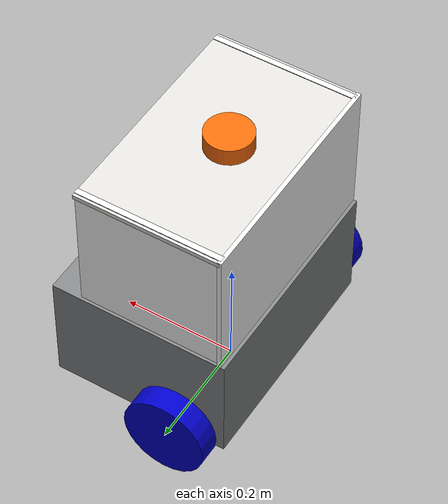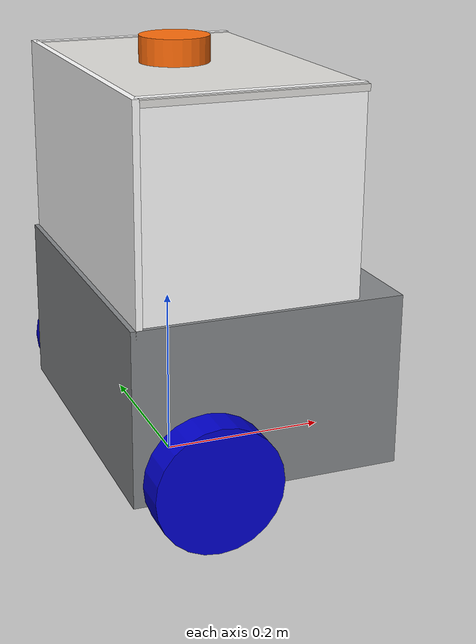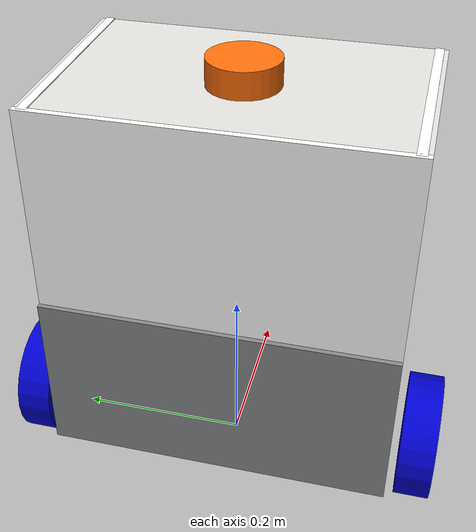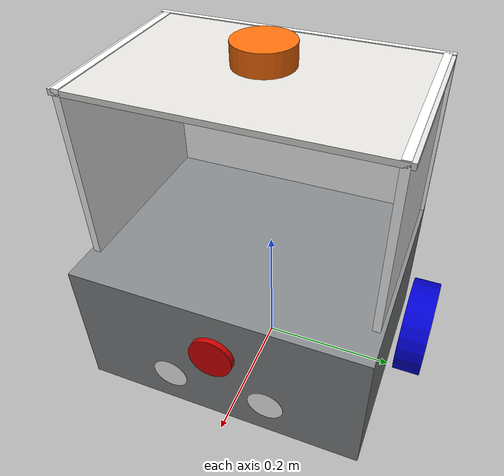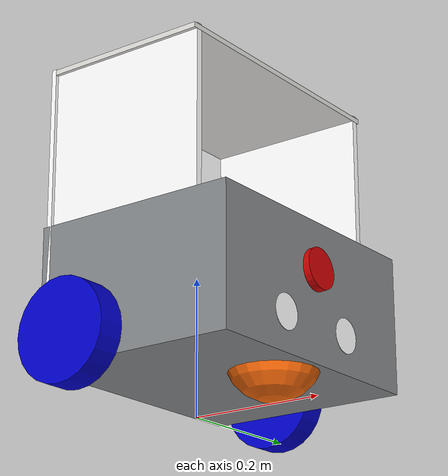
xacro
<?xml version="1.0"?>
<robot xmlns:xacro="http://www.ros.org/wiki/xacro">

	    <material name="black">
		<color rgba="0.0 0.0 0.0 1.0"/>
	    </material>

	    <material name="blue">
		<color rgba="0.0 0.0 0.8 1.0"/>
	    </material>

	    <material name="green">
		<color rgba="0.0 0.8 0.0 1.0"/>
	    </material>

	    <material name="grey">
		<color rgba="0.2 0.2 0.2 1.0"/>
	    </material>

	    <material name="orange">
		<color rgba="${255/255} ${108/255} ${10/255} 1.0"/>
	    </material>

	    <material name="brown">
		<color rgba="${222/255} ${207/255} ${195/255} 1.0"/>
	    </material>

	    <material name="red">
		<color rgba="0.8 0.0 0.0 1.0"/>
	    </material>

	    <material name="white">
		<color rgba="1.0 1.0 1.0 1.0"/>
	    </material>

	    <material name="stainless">
		<color rgba="${224/255} ${223/255} ${219/255} 1.0"/>
	    </material>

	    <material name="aluminium">
		<color rgba="${132/255} ${135/255} ${137/255} 1.0"/>
	    </material>

	    <xacro:property name="body_length" value="0.31"/>
	    <xacro:property name="body_width" value="0.4"/>
	    <xacro:property name="body_height" value="0.2"/>
	    <xacro:property name="body_mass" value="12"/>

	    <xacro:property name="base_caster_length" value="0.25"/>
	    <xacro:property name="base_caster_width" value="0.01"/>
	    <xacro:property name="base_caster_height" value="0.37"/>

	    <xacro:property name="above_base_caster_length" value="0.25"/>
	    <xacro:property name="above_base_caster_width" value="0.4"/>
	    <xacro:property name="above_base_caster_height" value="0.0075"/>

	    <xacro:property name="back_base_caster_length" value="0.0075"/>
	    <xacro:property name="back_base_caster_width" value="0.4"/>
	    <xacro:property name="back_base_caster_height" value="0.37"/>

	    <xacro:property name="wheel_radius" value="0.072"/>
	    <xacro:property name="wheel_width" value="0.04"/>
	    <xacro:property name="wheel_mass" value="0.4"/>
	    <xacro:property name="wheel_separation" value="0.46"/>
	    <xacro:property name="PI" value="3.1415926535897931"/>

	    <xacro:macro name="cylinder_inertia" params="m r h">
		<inertia ixx="${m*(3*r*r+h*h)/12}" ixy = "0" ixz = "0"
		         iyy="${m*(3*r*r+h*h)/12}" iyz = "0"
		         izz="${m*r*r/2}"/>
	    </xacro:macro>

	    <xacro:macro name="box_inertia" params="m l w h">
		<inertia ixx="${m*(h*h+l*l)/12}" ixy = "0" ixz = "0"
		         iyy="${m*(w*w+h*h)/12}" iyz = "0"
		         izz="${m*(w*w+l*l)/12}" />
	    </xacro:macro>

    	<link name="base_footprint">
    		<origin xyz="0.0 0.0 0.0"/>

    	</link>

       <joint name="base_footprint_joint" type="fixed">
       	<origin xyz="0.0 0.0 ${wheel_radius}" rpy="0.0 0.0 0.0"/>
        	<parent link="base_footprint"/>
        	<child link="base_link"/>

    	</joint>

       <link name="base_link">
       	<origin xyz="0.0 0.0 0.0"/>

       </link>

    <!-- CHASSIS_LINK -->

    <joint name="chassis_joint" type="fixed">
        <parent link="base_link"/>
        <child link="chassis"/>
        <origin xyz="-0.16 0.0 0.0"/>
    </joint>

    <link name="chassis">
        <inertial>
            <origin xyz="0.2055 0.0 0.07" rpy="0.0 0.0 0.0"/>
            <mass value="${body_mass}"/>
            <xacro:box_inertia m="${body_mass}" l="${body_length}" w="${body_width}" h="${body_height}"/>
        </inertial>
        <visual>
            <origin xyz="0.2055 0.0 0.07" rpy="0.0 0.0 0.0"/>
            <geometry>
                 <box size="${body_length} ${body_width} ${body_height}"/>
            </geometry>
            <material name="aluminium"/>
        </visual>
        <collision>
            <origin xyz="0.2055 0.0 0.07" rpy="0.0 0.0 0.0"/>
            <geometry>
                 <box size="${body_length} ${body_width} ${body_height}"/>
            </geometry>
        </collision>
    </link>

<!--right wheel-->

       <link name="right_wheel">
         	<visual>
           		<geometry>
             			<cylinder radius="${wheel_radius}" length="${wheel_width}"/>
           		</geometry>
           		<material name="blue"/>
         	</visual>
         	<collision>
           		<geometry>
             			<cylinder radius="${wheel_radius}" length="${wheel_width}"/>
           		</geometry>
         	</collision>
       	<inertial>
            		<mass value="${wheel_mass}"/>
            		<xacro:cylinder_inertia m="${wheel_mass}" r="${wheel_radius}" h="${wheel_width}"/>
        	</inertial>
       </link>
       <joint name="right_wheel_joint" type="continuous">
         	<parent link="base_link"/>
         	<child link="right_wheel"/>
         	<origin xyz="-0.03 -0.23 0.0" rpy="${PI/2} 0 0"/>
         	<axis xyz="0 0 -1"/>
       </joint>

<!--left wheel-->

	<link name="left_wheel">
         	<visual>
           		<geometry>
             			<cylinder radius="${wheel_radius}" length="${wheel_width}"/>
           		</geometry>
           		<material name="blue"/>
         	</visual>
         	<collision>
           		<geometry>
             			<cylinder radius="${wheel_radius}" length="${wheel_width}"/>
           		</geometry>
         	</collision>
         	<inertial>
            		<mass value="${wheel_mass}"/>
            		<xacro:cylinder_inertia m="${wheel_mass}" r="${wheel_radius}" h="${wheel_width}"/>
        	</inertial>
       </link>
       <joint name="left_wheel_joint" type="continuous">
       	<parent link="base_link"/>
         	<child link="left_wheel"/>
         	<origin xyz="-0.03 0.23 0.0" rpy="${-PI/2} 0.0 0.0"/>
         	<axis xyz="0 0 1"/>
       </joint>

<!--base caster lidar-->
	<link name = "above_base_caster" >
		<visual>
			<geometry>
				<box size="${above_base_caster_length} ${above_base_caster_width} ${above_base_caster_height}"/>
			</geometry>
			<material name = "stainless" />
		</visual>
		<collision>
			<geometry>
				<box size="${above_base_caster_length} ${above_base_caster_width} ${above_base_caster_height}"/>
			</geometry>
		</collision>
		<inertial>
            		<mass value="0.2" />

            		<inertia ixx="0.1" ixy="0.0" ixz="0.0"
                    		iyy="0.1" iyz="0.0"
                    		izz="0.1" />
        	</inertial>
	</link>
	<joint name="above_base_caster_joint" type="fixed">
         	<parent link="base_link"/>
         	<child link="above_base_caster"/>
         	<origin xyz="0.025 0.0 0.40" rpy="0 0 0"/>

       </joint>

	<link name = "right_base_caster" >
		<visual>
			<geometry>
				<box size="${base_caster_length} ${base_caster_width} ${base_caster_height}"/>
			</geometry>
			<material name = "white" />
		</visual>
		<collision>
			<geometry>
				<box size="${base_caster_length} ${base_caster_width} ${base_caster_height}"/>
			</geometry>
		</collision>
		<inertial>
            		<mass value="0.2" />

            		<inertia ixx="0.1" ixy="0.0" ixz="0.0"
                    		iyy="0.1" iyz="0.0"
                    		izz="0.1" />
        	</inertial>
	</link>
	<joint name="right_base_caster_joint" type="fixed">
         	<parent link="base_link"/>
         	<child link="right_base_caster"/>
         	<origin xyz="0.025 0.19 0.22" rpy="0 0 0"/>

       </joint>

	<link name = "left_base_caster" >
		<visual>
			<geometry>
				<box size="${base_caster_length} ${base_caster_width} ${base_caster_height}"/>
			</geometry>
			<material name = "white" />
		</visual>
		<collision>
			<geometry>
				<box size="${base_caster_length} ${base_caster_width} ${base_caster_height}"/>
			</geometry>
		</collision>
		<inertial>
            		<mass value="0.2" />

            		<inertia ixx="0.1" ixy="0.0" ixz="0.0"
                    		iyy="0.1" iyz="0.0"
                    		izz="0.1" />
        	</inertial>
	</link>
	<joint name="left_base_caster_joint" type="fixed">
         	<parent link="base_link"/>
         	<child link="left_base_caster"/>
         	<origin xyz="0.025 -0.19 0.22" rpy="0 0 0"/>

       </joint>

	<link name = "back_base_caster" >
		<visual>
			<geometry>
				<box size="${back_base_caster_length} ${back_base_caster_width} ${back_base_caster_height}"/>
			</geometry>
			<material name = "white" />
		</visual>
		<collision>
			<geometry>
				<box size="${base_caster_length} ${base_caster_width} ${base_caster_height}"/>
			</geometry>
		</collision>
		<inertial>
            		<mass value="0.5" />

            		<inertia ixx="0.1" ixy="0.0" ixz="0.0"
                    		iyy="0.1" iyz="0.0"
                    		izz="0.1" />
        	</inertial>
	</link>
	<joint name="back_base_caster_joint" type="fixed">
         	<parent link="base_link"/>
         	<child link="back_base_caster"/>
         	<origin xyz="-0.1 0 0.22" rpy="0 0 0"/>

       </joint>

<!--caster wheel-->
	<link name = "caster_wheel" >
		<visual>
			<geometry>
				<sphere radius = "0.07" />
			</geometry>
			<material name = "orange" />
		</visual>
		<collision>
			<geometry>
				<sphere radius = "0.072" />
			</geometry>
		</collision>
		<inertial>
            		<mass value="0.1" />

            		<inertia ixx="0.1" ixy="0.0" ixz="0.0"
                    		iyy="0.1" iyz="0.0"
                    		izz="0.1" />
        	</inertial>
	</link>

	<joint name = "caster_wheel_joint" type = "fixed" >
		<parent link = "base_link" />
		<child link = "caster_wheel" />
		<origin xyz = "0.13 0 0.0" />
	</joint>

       <!-- lidar -->
    <joint name="joint_scan" type="fixed">
        <origin xyz="0 0.0 ${body_height +0.25+ 0.009}" rpy="0.0 0.0 -0.3837777777777778"/>
        <parent link="base_link"/>
        <child link="laser"/>
    </joint>

    <link name="laser">
        <visual>
            <origin xyz="0.01 0.0 -0.04" rpy="0.0 0.0 0.0"/>
            <geometry>
                <cylinder radius="0.04" length="0.03"/>
            </geometry>
            <material name="orange"/>
        </visual>
        <collision>
            <origin xyz="0.01 0.0 -0.04" rpy="0.0 0.0 0.0"/>
            <geometry>
                <cylinder radius="0.04" length="0.03"/>
            </geometry>
        </collision>
        <inertial>
            <origin xyz="0.01 0.0 -0.04" rpy="0.0 0.0 0.0"/>
            <mass value="0.114"/>
            <inertia ixx="0.01" ixy="0.0" ixz="0.0" iyy="0.01" iyz="0.0" izz="0.01"/>
        </inertial>
    </link>

    <!--Face robot-->
    <joint name="face_joint" type="fixed">
        <parent link="chassis"/>
        <child link="face_link"/>
        <origin xyz="${body_length} 0 ${body_height/2}" rpy="0 0 0"/>
    </joint>

    <link name="face_link">
        <visual>
            <origin xyz="0.05 0.07 -0.075" rpy="0 ${PI/2} 0"/>
            <geometry>
                <cylinder radius="0.025" length="0.002"/>
            </geometry>
            <material name="white"/>
        </visual>

        <visual>
            <origin xyz="0.05 -0.07 -0.075" rpy="0 ${PI/2} 0"/>
            <geometry>
                <cylinder radius="0.025" length="0.002"/>
            </geometry>
            <material name="white"/>
        </visual>

        <visual>
            <origin xyz="0.05 0.0 0.0" rpy="0 ${1.5} 0"/>
            <geometry>
                <cylinder radius="0.03" length="0.02"/>
            </geometry>
            <material name="red"/>
        </visual>
    </link>

    <!-- plugin lidar -->

</robot>
